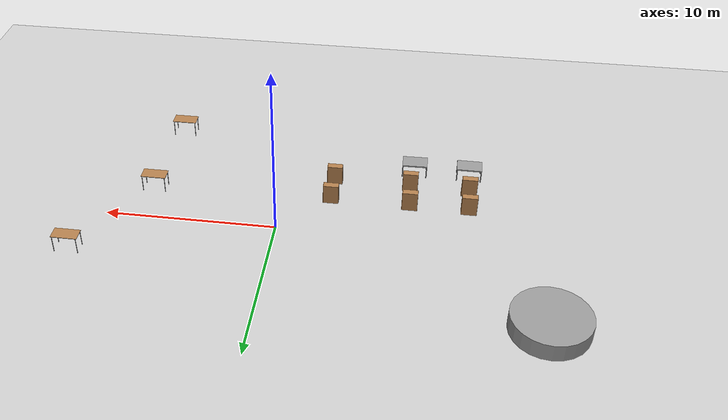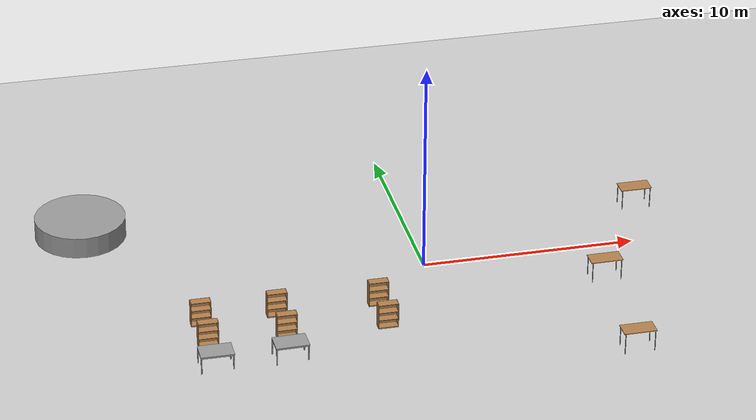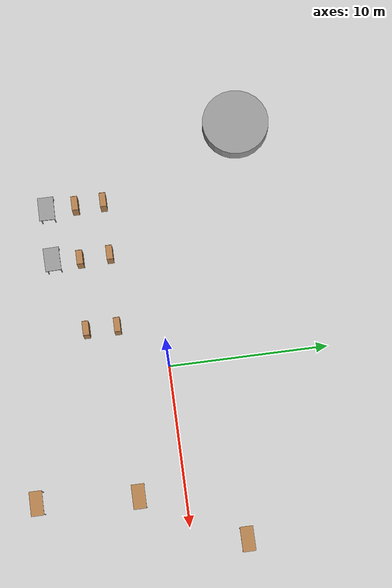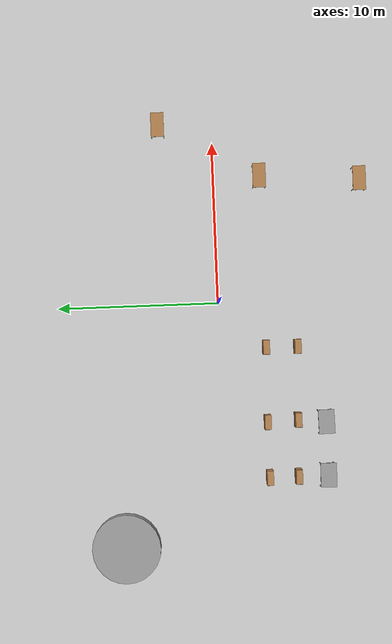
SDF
<sdf version="1.6">
 <world name="default">
  <model name="ground_plane">
   <static>1</static>
   <link name="link">
    <collision name="collision">
     <geometry><plane><normal>0 0 1</normal><size>100 100</size></plane></geometry>
     <surface><friction><ode><mu>100</mu><mu2>50</mu2></ode></friction></surface>
    </collision>
    <visual name="visual">
     <cast_shadows>0</cast_shadows>
     <geometry><plane><normal>0 0 1</normal><size>100 100</size></plane></geometry>
     <material>
      <script><uri>file://media/materials/scripts/gazebo.material</uri><name>Gazebo/Grey</name></script>
     </material>
    </visual>
   </link>
  </model>
  <model name="mydesk">
   <link name="link_0">
    <inertial>
     <mass>1</mass>
     <inertia>
      <ixx>0.166667</ixx>
      <ixy>0</ixy>
      <ixz>0</ixz>
      <iyy>0.166667</iyy>
      <iyz>0</iyz>
      <izz>0.166667</izz>
     </inertia>
    </inertial>
    <pose>0 0.022 0.32 0 -0 0</pose>
    <visual name="visual">
     <geometry><box><size>1.5 1 0.08</size></box></geometry>
     <material>
      <lighting>1</lighting>
      <script><uri>file://media/materials/scripts/gazebo.material</uri><name>Gazebo/Grey</name></script>
      <shader type="vertex"><normal_map>__default__</normal_map></shader>
      <ambient>0.3 0.3 0.3 1</ambient>
      <diffuse>0.7 0.7 0.7 1</diffuse>
      <specular>0.01 0.01 0.01 1</specular>
      <emissive>0 0 0 1</emissive>
     </material>
    </visual>
    <collision name="collision">
     <geometry><box><size>1.5 1 0.08</size></box></geometry>
     <surface>
      <friction>
       <ode><mu>1</mu><mu2>1</mu2><fdir1>0 0 0</fdir1><slip1>0</slip1><slip2>0</slip2></ode>
       <torsional>
        <coefficient>1</coefficient>
        <patch_radius>0</patch_radius>
        <surface_radius>0</surface_radius>
        <use_patch_radius>1</use_patch_radius>
        <ode><slip>0</slip></ode>
       </torsional>
      </friction>
      <bounce><restitution_coefficient>0</restitution_coefficient><threshold>1e+06</threshold></bounce>
      <contact>
       <collide_without_contact>0</collide_without_contact>
       <collide_without_contact_bitmask>1</collide_without_contact_bitmask>
       <collide_bitmask>1</collide_bitmask>
       <ode>
        <soft_cfm>0</soft_cfm>
        <soft_erp>0.2</soft_erp>
        <kp>1e+13</kp>
        <kd>1</kd>
        <max_vel>0.01</max_vel>
        <min_depth>0</min_depth>
       </ode>
       <bullet>
        <split_impulse>1</split_impulse>
        <split_impulse_penetration_threshold>-0.01</split_impulse_penetration_threshold>
        <soft_cfm>0</soft_cfm>
        <soft_erp>0.2</soft_erp>
        <kp>1e+13</kp>
        <kd>1</kd>
       </bullet>
      </contact>
     </surface>
    </collision>
   </link>
   <link name="link_1">
    <inertial>
     <mass>1</mass>
     <inertia><ixx>0.145833</ixx><ixy>0</ixy><ixz>0</ixz><iyy>0.145833</iyy><iyz>0</iyz><izz>0.125</izz></inertia>
     <pose>0 0 -0.02 0 -0 0</pose>
    </inertial>
    <pose>-0.72 0.382 -0.08 0 -0 0</pose>
    <visual name="visual">
     <geometry><cylinder><radius>0.03</radius><length>0.8</length></cylinder></geometry>
     <material>
      <lighting>1</lighting>
      <script><uri>file://media/materials/scripts/gazebo.material</uri><name>Gazebo/Grey</name></script>
      <shader type="vertex"><normal_map>__default__</normal_map></shader>
      <ambient>0.3 0.3 0.3 1</ambient>
      <diffuse>0.7 0.7 0.7 1</diffuse>
      <specular>0.01 0.01 0.01 1</specular>
      <emissive>0 0 0 1</emissive>
     </material>
    </visual>
    <collision name="collision">
     <geometry><cylinder><radius>0.03</radius><length>0.8</length></cylinder></geometry>
     <surface>
      <friction>
       <ode><mu>1</mu><mu2>1</mu2><fdir1>0 0 0</fdir1><slip1>0</slip1><slip2>0</slip2></ode>
       <torsional>
        <coefficient>1</coefficient>
        <patch_radius>0</patch_radius>
        <surface_radius>0</surface_radius>
        <use_patch_radius>1</use_patch_radius>
        <ode><slip>0</slip></ode>
       </torsional>
      </friction>
      <bounce><restitution_coefficient>0</restitution_coefficient><threshold>1e+06</threshold></bounce>
      <contact>
       <collide_without_contact>0</collide_without_contact>
       <collide_without_contact_bitmask>1</collide_without_contact_bitmask>
       <collide_bitmask>1</collide_bitmask>
       <ode>
        <soft_cfm>0</soft_cfm>
        <soft_erp>0.2</soft_erp>
        <kp>1e+13</kp>
        <kd>1</kd>
        <max_vel>0.01</max_vel>
        <min_depth>0</min_depth>
       </ode>
       <bullet>
        <split_impulse>1</split_impulse>
        <split_impulse_penetration_threshold>-0.01</split_impulse_penetration_threshold>
        <soft_cfm>0</soft_cfm>
        <soft_erp>0.2</soft_erp>
        <kp>1e+13</kp>
        <kd>1</kd>
       </bullet>
      </contact>
     </surface>
    </collision>
   </link>
   <link name="link_1_clone">
    <inertial>
     <mass>1</mass>
     <inertia><ixx>0.145833</ixx><ixy>0</ixy><ixz>0</ixz><iyy>0.145833</iyy><iyz>0</iyz><izz>0.125</izz></inertia>
     <pose>0 0 -0.02 0 -0 0</pose>
    </inertial>
    <pose>-0.72 -0.448 -0.08 0 -0 0</pose>
    <visual name="visual">
     <geometry><cylinder><radius>0.03</radius><length>0.8</length></cylinder></geometry>
     <material>
      <lighting>1</lighting>
      <script><uri>file://media/materials/scripts/gazebo.material</uri><name>Gazebo/Grey</name></script>
      <shader type="vertex"><normal_map>__default__</normal_map></shader>
      <ambient>0.3 0.3 0.3 1</ambient>
      <diffuse>0.7 0.7 0.7 1</diffuse>
      <specular>0.01 0.01 0.01 1</specular>
      <emissive>0 0 0 1</emissive>
     </material>
    </visual>
    <collision name="collision">
     <geometry><cylinder><radius>0.03</radius><length>0.8</length></cylinder></geometry>
     <surface>
      <friction>
       <ode><mu>1</mu><mu2>1</mu2><fdir1>0 0 0</fdir1><slip1>0</slip1><slip2>0</slip2></ode>
       <torsional>
        <coefficient>1</coefficient>
        <patch_radius>0</patch_radius>
        <surface_radius>0</surface_radius>
        <use_patch_radius>1</use_patch_radius>
        <ode><slip>0</slip></ode>
       </torsional>
      </friction>
      <bounce><restitution_coefficient>0</restitution_coefficient><threshold>1e+06</threshold></bounce>
      <contact>
       <collide_without_contact>0</collide_without_contact>
       <collide_without_contact_bitmask>1</collide_without_contact_bitmask>
       <collide_bitmask>1</collide_bitmask>
       <ode>
        <soft_cfm>0</soft_cfm>
        <soft_erp>0.2</soft_erp>
        <kp>1e+13</kp>
        <kd>1</kd>
        <max_vel>0.01</max_vel>
        <min_depth>0</min_depth>
       </ode>
       <bullet>
        <split_impulse>1</split_impulse>
        <split_impulse_penetration_threshold>-0.01</split_impulse_penetration_threshold>
        <soft_cfm>0</soft_cfm>
        <soft_erp>0.2</soft_erp>
        <kp>1e+13</kp>
        <kd>1</kd>
       </bullet>
      </contact>
     </surface>
    </collision>
   </link>
   <link name="link_1_clone_0">
    <inertial>
     <mass>1</mass>
     <inertia><ixx>0.145833</ixx><ixy>0</ixy><ixz>0</ixz><iyy>0.145833</iyy><iyz>0</iyz><izz>0.125</izz></inertia>
     <pose>0 0 -0.02 0 -0 0</pose>
    </inertial>
    <pose>0.72 -0.448 -0.08 0 -0 0</pose>
    <visual name="visual">
     <geometry><cylinder><radius>0.03</radius><length>0.8</length></cylinder></geometry>
     <material>
      <lighting>1</lighting>
      <script><uri>file://media/materials/scripts/gazebo.material</uri><name>Gazebo/Grey</name></script>
      <shader type="vertex"><normal_map>__default__</normal_map></shader>
      <ambient>0.3 0.3 0.3 1</ambient>
      <diffuse>0.7 0.7 0.7 1</diffuse>
      <specular>0.01 0.01 0.01 1</specular>
      <emissive>0 0 0 1</emissive>
     </material>
    </visual>
    <collision name="collision">
     <geometry><cylinder><radius>0.03</radius><length>0.8</length></cylinder></geometry>
     <surface>
      <friction>
       <ode><mu>1</mu><mu2>1</mu2><fdir1>0 0 0</fdir1><slip1>0</slip1><slip2>0</slip2></ode>
       <torsional>
        <coefficient>1</coefficient>
        <patch_radius>0</patch_radius>
        <surface_radius>0</surface_radius>
        <use_patch_radius>1</use_patch_radius>
        <ode><slip>0</slip></ode>
       </torsional>
      </friction>
      <bounce><restitution_coefficient>0</restitution_coefficient><threshold>1e+06</threshold></bounce>
      <contact>
       <collide_without_contact>0</collide_without_contact>
       <collide_without_contact_bitmask>1</collide_without_contact_bitmask>
       <collide_bitmask>1</collide_bitmask>
       <ode>
        <soft_cfm>0</soft_cfm>
        <soft_erp>0.2</soft_erp>
        <kp>1e+13</kp>
        <kd>1</kd>
        <max_vel>0.01</max_vel>
        <min_depth>0</min_depth>
       </ode>
       <bullet>
        <split_impulse>1</split_impulse>
        <split_impulse_penetration_threshold>-0.01</split_impulse_penetration_threshold>
        <soft_cfm>0</soft_cfm>
        <soft_erp>0.2</soft_erp>
        <kp>1e+13</kp>
        <kd>1</kd>
       </bullet>
      </contact>
     </surface>
    </collision>
   </link>
   <link name="link_1_clone_1">
    <inertial>
     <mass>1</mass>
     <inertia><ixx>0.145833</ixx><ixy>0</ixy><ixz>0</ixz><iyy>0.145833</iyy><iyz>0</iyz><izz>0.125</izz></inertia>
     <pose>0 0 -0.02 0 -0 0</pose>
    </inertial>
    <pose>0.72 0.492 -0.08 0 -0 0</pose>
    <visual name="visual">
     <geometry><cylinder><radius>0.03</radius><length>0.8</length></cylinder></geometry>
     <material>
      <lighting>1</lighting>
      <script><uri>file://media/materials/scripts/gazebo.material</uri><name>Gazebo/Grey</name></script>
      <shader type="vertex"><normal_map>__default__</normal_map></shader>
      <ambient>0.3 0.3 0.3 1</ambient>
      <diffuse>0.7 0.7 0.7 1</diffuse>
      <specular>0.01 0.01 0.01 1</specular>
      <emissive>0 0 0 1</emissive>
     </material>
    </visual>
    <collision name="collision">
     <geometry><cylinder><radius>0.03</radius><length>0.8</length></cylinder></geometry>
     <surface>
      <friction>
       <ode><mu>1</mu><mu2>1</mu2><fdir1>0 0 0</fdir1><slip1>0</slip1><slip2>0</slip2></ode>
       <torsional>
        <coefficient>1</coefficient>
        <patch_radius>0</patch_radius>
        <surface_radius>0</surface_radius>
        <use_patch_radius>1</use_patch_radius>
        <ode><slip>0</slip></ode>
       </torsional>
      </friction>
      <bounce><restitution_coefficient>0</restitution_coefficient><threshold>1e+06</threshold></bounce>
      <contact>
       <collide_without_contact>0</collide_without_contact>
       <collide_without_contact_bitmask>1</collide_without_contact_bitmask>
       <collide_bitmask>1</collide_bitmask>
       <ode>
        <soft_cfm>0</soft_cfm>
        <soft_erp>0.2</soft_erp>
        <kp>1e+13</kp>
        <kd>1</kd>
        <max_vel>0.01</max_vel>
        <min_depth>0</min_depth>
       </ode>
       <bullet>
        <split_impulse>1</split_impulse>
        <split_impulse_penetration_threshold>-0.01</split_impulse_penetration_threshold>
        <soft_cfm>0</soft_cfm>
        <soft_erp>0.2</soft_erp>
        <kp>1e+13</kp>
        <kd>1</kd>
       </bullet>
      </contact>
     </surface>
    </collision>
   </link>
   <joint name="link_0_JOINT_0" type="fixed">
    <parent>link_0</parent>
    <child>link_1_clone</child>
    <physics>
     <ode><limit><cfm>0</cfm><erp>0.2</erp></limit><suspension><cfm>0</cfm><erp>0.2</erp></suspension></ode>
    </physics>
   </joint>
   <joint name="link_0_JOINT_1" type="fixed">
    <parent>link_0</parent>
    <child>link_1_clone_1</child>
    <physics>
     <ode><limit><cfm>0</cfm><erp>0.2</erp></limit><suspension><cfm>0</cfm><erp>0.2</erp></suspension></ode>
    </physics>
   </joint>
   <joint name="link_0_JOINT_2" type="fixed">
    <parent>link_0</parent>
    <child>link_1_clone_0</child>
    <physics>
     <ode><limit><cfm>0</cfm><erp>0.2</erp></limit><suspension><cfm>0</cfm><erp>0.2</erp></suspension></ode>
    </physics>
   </joint>
   <joint name="link_0_JOINT_3" type="fixed">
    <parent>link_0</parent>
    <child>link_1</child>
    <physics>
     <ode><limit><cfm>0</cfm><erp>0.2</erp></limit><suspension><cfm>0</cfm><erp>0.2</erp></suspension></ode>
    </physics>
   </joint>
   <static>0</static>
   <pose>-7.60063 -6.44078 0.479998 3e-06 3e-06 -3.12126</pose>
  </model>
  <model name="mydesk_clone">
   <link name="link_0">
    <inertial>
     <mass>1</mass>
     <inertia>
      <ixx>0.166667</ixx>
      <ixy>0</ixy>
      <ixz>0</ixz>
      <iyy>0.166667</iyy>
      <iyz>0</iyz>
      <izz>0.166667</izz>
     </inertia>
    </inertial>
    <pose>0 0.022 0.32 0 -0 0</pose>
    <visual name="visual">
     <geometry><box><size>1.5 1 0.08</size></box></geometry>
     <material>
      <lighting>1</lighting>
      <script><uri>file://media/materials/scripts/gazebo.material</uri><name>Gazebo/Grey</name></script>
      <shader type="vertex"><normal_map>__default__</normal_map></shader>
      <ambient>0.3 0.3 0.3 1</ambient>
      <diffuse>0.7 0.7 0.7 1</diffuse>
      <specular>0.01 0.01 0.01 1</specular>
      <emissive>0 0 0 1</emissive>
     </material>
    </visual>
    <collision name="collision">
     <geometry><box><size>1.5 1 0.08</size></box></geometry>
     <surface>
      <friction>
       <ode><mu>1</mu><mu2>1</mu2><fdir1>0 0 0</fdir1><slip1>0</slip1><slip2>0</slip2></ode>
       <torsional>
        <coefficient>1</coefficient>
        <patch_radius>0</patch_radius>
        <surface_radius>0</surface_radius>
        <use_patch_radius>1</use_patch_radius>
        <ode><slip>0</slip></ode>
       </torsional>
      </friction>
      <bounce><restitution_coefficient>0</restitution_coefficient><threshold>1e+06</threshold></bounce>
      <contact>
       <collide_without_contact>0</collide_without_contact>
       <collide_without_contact_bitmask>1</collide_without_contact_bitmask>
       <collide_bitmask>1</collide_bitmask>
       <ode>
        <soft_cfm>0</soft_cfm>
        <soft_erp>0.2</soft_erp>
        <kp>1e+13</kp>
        <kd>1</kd>
        <max_vel>0.01</max_vel>
        <min_depth>0</min_depth>
       </ode>
       <bullet>
        <split_impulse>1</split_impulse>
        <split_impulse_penetration_threshold>-0.01</split_impulse_penetration_threshold>
        <soft_cfm>0</soft_cfm>
        <soft_erp>0.2</soft_erp>
        <kp>1e+13</kp>
        <kd>1</kd>
       </bullet>
      </contact>
     </surface>
    </collision>
   </link>
   <link name="link_1">
    <inertial>
     <mass>1</mass>
     <inertia><ixx>0.145833</ixx><ixy>0</ixy><ixz>0</ixz><iyy>0.145833</iyy><iyz>0</iyz><izz>0.125</izz></inertia>
     <pose>0 0 -0.02 0 -0 0</pose>
    </inertial>
    <pose>-0.72 0.382 -0.08 0 -0 0</pose>
    <visual name="visual">
     <geometry><cylinder><radius>0.03</radius><length>0.8</length></cylinder></geometry>
     <material>
      <lighting>1</lighting>
      <script><uri>file://media/materials/scripts/gazebo.material</uri><name>Gazebo/Grey</name></script>
      <shader type="vertex"><normal_map>__default__</normal_map></shader>
      <ambient>0.3 0.3 0.3 1</ambient>
      <diffuse>0.7 0.7 0.7 1</diffuse>
      <specular>0.01 0.01 0.01 1</specular>
      <emissive>0 0 0 1</emissive>
     </material>
    </visual>
    <collision name="collision">
     <geometry><cylinder><radius>0.03</radius><length>0.8</length></cylinder></geometry>
     <surface>
      <friction>
       <ode><mu>1</mu><mu2>1</mu2><fdir1>0 0 0</fdir1><slip1>0</slip1><slip2>0</slip2></ode>
       <torsional>
        <coefficient>1</coefficient>
        <patch_radius>0</patch_radius>
        <surface_radius>0</surface_radius>
        <use_patch_radius>1</use_patch_radius>
        <ode><slip>0</slip></ode>
       </torsional>
      </friction>
      <bounce><restitution_coefficient>0</restitution_coefficient><threshold>1e+06</threshold></bounce>
      <contact>
       <collide_without_contact>0</collide_without_contact>
       <collide_without_contact_bitmask>1</collide_without_contact_bitmask>
       <collide_bitmask>1</collide_bitmask>
       <ode>
        <soft_cfm>0</soft_cfm>
        <soft_erp>0.2</soft_erp>
        <kp>1e+13</kp>
        <kd>1</kd>
        <max_vel>0.01</max_vel>
        <min_depth>0</min_depth>
       </ode>
       <bullet>
        <split_impulse>1</split_impulse>
        <split_impulse_penetration_threshold>-0.01</split_impulse_penetration_threshold>
        <soft_cfm>0</soft_cfm>
        <soft_erp>0.2</soft_erp>
        <kp>1e+13</kp>
        <kd>1</kd>
       </bullet>
      </contact>
     </surface>
    </collision>
   </link>
   <link name="link_1_clone">
    <inertial>
     <mass>1</mass>
     <inertia><ixx>0.145833</ixx><ixy>0</ixy><ixz>0</ixz><iyy>0.145833</iyy><iyz>0</iyz><izz>0.125</izz></inertia>
     <pose>0 0 -0.02 0 -0 0</pose>
    </inertial>
    <pose>-0.72 -0.448 -0.08 0 -0 0</pose>
    <visual name="visual">
     <geometry><cylinder><radius>0.03</radius><length>0.8</length></cylinder></geometry>
     <material>
      <lighting>1</lighting>
      <script><uri>file://media/materials/scripts/gazebo.material</uri><name>Gazebo/Grey</name></script>
      <shader type="vertex"><normal_map>__default__</normal_map></shader>
      <ambient>0.3 0.3 0.3 1</ambient>
      <diffuse>0.7 0.7 0.7 1</diffuse>
      <specular>0.01 0.01 0.01 1</specular>
      <emissive>0 0 0 1</emissive>
     </material>
    </visual>
    <collision name="collision">
     <geometry><cylinder><radius>0.03</radius><length>0.8</length></cylinder></geometry>
     <surface>
      <friction>
       <ode><mu>1</mu><mu2>1</mu2><fdir1>0 0 0</fdir1><slip1>0</slip1><slip2>0</slip2></ode>
       <torsional>
        <coefficient>1</coefficient>
        <patch_radius>0</patch_radius>
        <surface_radius>0</surface_radius>
        <use_patch_radius>1</use_patch_radius>
        <ode><slip>0</slip></ode>
       </torsional>
      </friction>
      <bounce><restitution_coefficient>0</restitution_coefficient><threshold>1e+06</threshold></bounce>
      <contact>
       <collide_without_contact>0</collide_without_contact>
       <collide_without_contact_bitmask>1</collide_without_contact_bitmask>
       <collide_bitmask>1</collide_bitmask>
       <ode>
        <soft_cfm>0</soft_cfm>
        <soft_erp>0.2</soft_erp>
        <kp>1e+13</kp>
        <kd>1</kd>
        <max_vel>0.01</max_vel>
        <min_depth>0</min_depth>
       </ode>
       <bullet>
        <split_impulse>1</split_impulse>
        <split_impulse_penetration_threshold>-0.01</split_impulse_penetration_threshold>
        <soft_cfm>0</soft_cfm>
        <soft_erp>0.2</soft_erp>
        <kp>1e+13</kp>
        <kd>1</kd>
       </bullet>
      </contact>
     </surface>
    </collision>
   </link>
   <link name="link_1_clone_0">
    <inertial>
     <mass>1</mass>
     <inertia><ixx>0.145833</ixx><ixy>0</ixy><ixz>0</ixz><iyy>0.145833</iyy><iyz>0</iyz><izz>0.125</izz></inertia>
     <pose>0 0 -0.02 0 -0 0</pose>
    </inertial>
    <pose>0.72 -0.448 -0.08 0 -0 0</pose>
    <visual name="visual">
     <geometry><cylinder><radius>0.03</radius><length>0.8</length></cylinder></geometry>
     <material>
      <lighting>1</lighting>
      <script><uri>file://media/materials/scripts/gazebo.material</uri><name>Gazebo/Grey</name></script>
      <shader type="vertex"><normal_map>__default__</normal_map></shader>
      <ambient>0.3 0.3 0.3 1</ambient>
      <diffuse>0.7 0.7 0.7 1</diffuse>
      <specular>0.01 0.01 0.01 1</specular>
      <emissive>0 0 0 1</emissive>
     </material>
    </visual>
    <collision name="collision">
     <geometry><cylinder><radius>0.03</radius><length>0.8</length></cylinder></geometry>
     <surface>
      <friction>
       <ode><mu>1</mu><mu2>1</mu2><fdir1>0 0 0</fdir1><slip1>0</slip1><slip2>0</slip2></ode>
       <torsional>
        <coefficient>1</coefficient>
        <patch_radius>0</patch_radius>
        <surface_radius>0</surface_radius>
        <use_patch_radius>1</use_patch_radius>
        <ode><slip>0</slip></ode>
       </torsional>
      </friction>
      <bounce><restitution_coefficient>0</restitution_coefficient><threshold>1e+06</threshold></bounce>
      <contact>
       <collide_without_contact>0</collide_without_contact>
       <collide_without_contact_bitmask>1</collide_without_contact_bitmask>
       <collide_bitmask>1</collide_bitmask>
       <ode>
        <soft_cfm>0</soft_cfm>
        <soft_erp>0.2</soft_erp>
        <kp>1e+13</kp>
        <kd>1</kd>
        <max_vel>0.01</max_vel>
        <min_depth>0</min_depth>
       </ode>
       <bullet>
        <split_impulse>1</split_impulse>
        <split_impulse_penetration_threshold>-0.01</split_impulse_penetration_threshold>
        <soft_cfm>0</soft_cfm>
        <soft_erp>0.2</soft_erp>
        <kp>1e+13</kp>
        <kd>1</kd>
       </bullet>
      </contact>
     </surface>
    </collision>
   </link>
   <link name="link_1_clone_1">
    <inertial>
     <mass>1</mass>
     <inertia><ixx>0.145833</ixx><ixy>0</ixy><ixz>0</ixz><iyy>0.145833</iyy><iyz>0</iyz><izz>0.125</izz></inertia>
     <pose>0 0 -0.02 0 -0 0</pose>
    </inertial>
    <pose>0.72 0.492 -0.08 0 -0 0</pose>
    <visual name="visual">
     <geometry><cylinder><radius>0.03</radius><length>0.8</length></cylinder></geometry>
     <material>
      <lighting>1</lighting>
      <script><uri>file://media/materials/scripts/gazebo.material</uri><name>Gazebo/Grey</name></script>
      <shader type="vertex"><normal_map>__default__</normal_map></shader>
      <ambient>0.3 0.3 0.3 1</ambient>
      <diffuse>0.7 0.7 0.7 1</diffuse>
      <specular>0.01 0.01 0.01 1</specular>
      <emissive>0 0 0 1</emissive>
     </material>
    </visual>
    <collision name="collision">
     <geometry><cylinder><radius>0.03</radius><length>0.8</length></cylinder></geometry>
     <surface>
      <friction>
       <ode><mu>1</mu><mu2>1</mu2><fdir1>0 0 0</fdir1><slip1>0</slip1><slip2>0</slip2></ode>
       <torsional>
        <coefficient>1</coefficient>
        <patch_radius>0</patch_radius>
        <surface_radius>0</surface_radius>
        <use_patch_radius>1</use_patch_radius>
        <ode><slip>0</slip></ode>
       </torsional>
      </friction>
      <bounce><restitution_coefficient>0</restitution_coefficient><threshold>1e+06</threshold></bounce>
      <contact>
       <collide_without_contact>0</collide_without_contact>
       <collide_without_contact_bitmask>1</collide_without_contact_bitmask>
       <collide_bitmask>1</collide_bitmask>
       <ode>
        <soft_cfm>0</soft_cfm>
        <soft_erp>0.2</soft_erp>
        <kp>1e+13</kp>
        <kd>1</kd>
        <max_vel>0.01</max_vel>
        <min_depth>0</min_depth>
       </ode>
       <bullet>
        <split_impulse>1</split_impulse>
        <split_impulse_penetration_threshold>-0.01</split_impulse_penetration_threshold>
        <soft_cfm>0</soft_cfm>
        <soft_erp>0.2</soft_erp>
        <kp>1e+13</kp>
        <kd>1</kd>
       </bullet>
      </contact>
     </surface>
    </collision>
   </link>
   <joint name="link_0_JOINT_0" type="fixed">
    <parent>link_0</parent>
    <child>link_1_clone</child>
    <physics>
     <ode><limit><cfm>0</cfm><erp>0.2</erp></limit><suspension><cfm>0</cfm><erp>0.2</erp></suspension></ode>
    </physics>
   </joint>
   <joint name="link_0_JOINT_1" type="fixed">
    <parent>link_0</parent>
    <child>link_1_clone_1</child>
    <physics>
     <ode><limit><cfm>0</cfm><erp>0.2</erp></limit><suspension><cfm>0</cfm><erp>0.2</erp></suspension></ode>
    </physics>
   </joint>
   <joint name="link_0_JOINT_2" type="fixed">
    <parent>link_0</parent>
    <child>link_1_clone_0</child>
    <physics>
     <ode><limit><cfm>0</cfm><erp>0.2</erp></limit><suspension><cfm>0</cfm><erp>0.2</erp></suspension></ode>
    </physics>
   </joint>
   <joint name="link_0_JOINT_3" type="fixed">
    <parent>link_0</parent>
    <child>link_1</child>
    <physics>
     <ode><limit><cfm>0</cfm><erp>0.2</erp></limit><suspension><cfm>0</cfm><erp>0.2</erp></suspension></ode>
    </physics>
   </joint>
   <static>0</static>
   <pose>-10.9128 -6.45407 0.479998 0 -0 3.13386</pose>
  </model>
  <model name="bookshelf">
   <static>1</static>
   <link name="link">
    <inertial><mass>1</mass></inertial>
    <collision name="back">
     <pose>0 0.005 0.6 0 -0 0</pose>
     <geometry><box><size>0.9 0.01 1.2</size></box></geometry>
    </collision>
    <visual name="visual1">
     <pose>0 0.005 0.6 0 -0 0</pose>
     <geometry><box><size>0.9 0.01 1.2</size></box></geometry>
     <material>
      <script><uri>file://media/materials/scripts/gazebo.material</uri><name>Gazebo/Wood</name></script>
     </material>
    </visual>
    <collision name="left_side">
     <pose>0.45 -0.195 0.6 0 -0 0</pose>
     <geometry><box><size>0.02 0.4 1.2</size></box></geometry>
    </collision>
    <visual name="visual2">
     <pose>0.45 -0.195 0.6 0 -0 0</pose>
     <geometry><box><size>0.02 0.4 1.2</size></box></geometry>
     <material>
      <script><uri>file://media/materials/scripts/gazebo.material</uri><name>Gazebo/Wood</name></script>
     </material>
    </visual>
    <collision name="right_side">
     <pose>-0.45 -0.195 0.6 0 -0 0</pose>
     <geometry><box><size>0.02 0.4 1.2</size></box></geometry>
    </collision>
    <visual name="visual3">
     <pose>-0.45 -0.195 0.6 0 -0 0</pose>
     <geometry><box><size>0.02 0.4 1.2</size></box></geometry>
     <material>
      <script><uri>file://media/materials/scripts/gazebo.material</uri><name>Gazebo/Wood</name></script>
     </material>
    </visual>
    <collision name="bottom">
     <pose>0 -0.195 0.03 0 -0 0</pose>
     <geometry><box><size>0.88 0.4 0.06</size></box></geometry>
    </collision>
    <visual name="visual4">
     <pose>0 -0.195 0.03 0 -0 0</pose>
     <geometry><box><size>0.88 0.4 0.06</size></box></geometry>
     <material>
      <script><uri>file://media/materials/scripts/gazebo.material</uri><name>Gazebo/Wood</name></script>
     </material>
    </visual>
    <collision name="top">
     <pose>0 -0.195 1.19 0 -0 0</pose>
     <geometry><box><size>0.88 0.4 0.02</size></box></geometry>
    </collision>
    <visual name="visual5">
     <pose>0 -0.195 1.19 0 -0 0</pose>
     <geometry><box><size>0.88 0.4 0.02</size></box></geometry>
     <material>
      <script><uri>file://media/materials/scripts/gazebo.material</uri><name>Gazebo/Wood</name></script>
     </material>
    </visual>
    <collision name="low_shelf">
     <pose>0 -0.195 0.43 0 -0 0</pose>
     <geometry><box><size>0.88 0.4 0.02</size></box></geometry>
    </collision>
    <visual name="visual6">
     <pose>0 -0.195 0.43 0 -0 0</pose>
     <geometry><box><size>0.88 0.4 0.02</size></box></geometry>
     <material>
      <script><uri>file://media/materials/scripts/gazebo.material</uri><name>Gazebo/Wood</name></script>
     </material>
    </visual>
    <collision name="high_shelf">
     <pose>0 -0.195 0.8 0 -0 0</pose>
     <geometry><box><size>0.88 0.4 0.02</size></box></geometry>
    </collision>
    <visual name="visual7">
     <pose>0 -0.195 0.8 0 -0 0</pose>
     <geometry><box><size>0.88 0.4 0.02</size></box></geometry>
     <material>
      <script><uri>file://media/materials/scripts/gazebo.material</uri><name>Gazebo/Wood</name></script>
     </material>
    </visual>
   </link>
   <pose>-10.9454 -2.64937 0 0 -0 0</pose>
  </model>
  <model name="bookshelf_0">
   <static>1</static>
   <link name="link">
    <inertial><mass>1</mass></inertial>
    <collision name="back">
     <pose>0 0.005 0.6 0 -0 0</pose>
     <geometry><box><size>0.9 0.01 1.2</size></box></geometry>
    </collision>
    <visual name="visual1">
     <pose>0 0.005 0.6 0 -0 0</pose>
     <geometry><box><size>0.9 0.01 1.2</size></box></geometry>
     <material>
      <script><uri>file://media/materials/scripts/gazebo.material</uri><name>Gazebo/Wood</name></script>
     </material>
    </visual>
    <collision name="left_side">
     <pose>0.45 -0.195 0.6 0 -0 0</pose>
     <geometry><box><size>0.02 0.4 1.2</size></box></geometry>
    </collision>
    <visual name="visual2">
     <pose>0.45 -0.195 0.6 0 -0 0</pose>
     <geometry><box><size>0.02 0.4 1.2</size></box></geometry>
     <material>
      <script><uri>file://media/materials/scripts/gazebo.material</uri><name>Gazebo/Wood</name></script>
     </material>
    </visual>
    <collision name="right_side">
     <pose>-0.45 -0.195 0.6 0 -0 0</pose>
     <geometry><box><size>0.02 0.4 1.2</size></box></geometry>
    </collision>
    <visual name="visual3">
     <pose>-0.45 -0.195 0.6 0 -0 0</pose>
     <geometry><box><size>0.02 0.4 1.2</size></box></geometry>
     <material>
      <script><uri>file://media/materials/scripts/gazebo.material</uri><name>Gazebo/Wood</name></script>
     </material>
    </visual>
    <collision name="bottom">
     <pose>0 -0.195 0.03 0 -0 0</pose>
     <geometry><box><size>0.88 0.4 0.06</size></box></geometry>
    </collision>
    <visual name="visual4">
     <pose>0 -0.195 0.03 0 -0 0</pose>
     <geometry><box><size>0.88 0.4 0.06</size></box></geometry>
     <material>
      <script><uri>file://media/materials/scripts/gazebo.material</uri><name>Gazebo/Wood</name></script>
     </material>
    </visual>
    <collision name="top">
     <pose>0 -0.195 1.19 0 -0 0</pose>
     <geometry><box><size>0.88 0.4 0.02</size></box></geometry>
    </collision>
    <visual name="visual5">
     <pose>0 -0.195 1.19 0 -0 0</pose>
     <geometry><box><size>0.88 0.4 0.02</size></box></geometry>
     <material>
      <script><uri>file://media/materials/scripts/gazebo.material</uri><name>Gazebo/Wood</name></script>
     </material>
    </visual>
    <collision name="low_shelf">
     <pose>0 -0.195 0.43 0 -0 0</pose>
     <geometry><box><size>0.88 0.4 0.02</size></box></geometry>
    </collision>
    <visual name="visual6">
     <pose>0 -0.195 0.43 0 -0 0</pose>
     <geometry><box><size>0.88 0.4 0.02</size></box></geometry>
     <material>
      <script><uri>file://media/materials/scripts/gazebo.material</uri><name>Gazebo/Wood</name></script>
     </material>
    </visual>
    <collision name="high_shelf">
     <pose>0 -0.195 0.8 0 -0 0</pose>
     <geometry><box><size>0.88 0.4 0.02</size></box></geometry>
    </collision>
    <visual name="visual7">
     <pose>0 -0.195 0.8 0 -0 0</pose>
     <geometry><box><size>0.88 0.4 0.02</size></box></geometry>
     <material>
      <script><uri>file://media/materials/scripts/gazebo.material</uri><name>Gazebo/Wood</name></script>
     </material>
    </visual>
   </link>
   <pose>-7.49457 -2.63262 0 0 -0 0</pose>
  </model>
  <model name="bookshelf_1">
   <static>1</static>
   <link name="link">
    <inertial><mass>1</mass></inertial>
    <collision name="back">
     <pose>0 0.005 0.6 0 -0 0</pose>
     <geometry><box><size>0.9 0.01 1.2</size></box></geometry>
    </collision>
    <visual name="visual1">
     <pose>0 0.005 0.6 0 -0 0</pose>
     <geometry><box><size>0.9 0.01 1.2</size></box></geometry>
     <material>
      <script><uri>file://media/materials/scripts/gazebo.material</uri><name>Gazebo/Wood</name></script>
     </material>
    </visual>
    <collision name="left_side">
     <pose>0.45 -0.195 0.6 0 -0 0</pose>
     <geometry><box><size>0.02 0.4 1.2</size></box></geometry>
    </collision>
    <visual name="visual2">
     <pose>0.45 -0.195 0.6 0 -0 0</pose>
     <geometry><box><size>0.02 0.4 1.2</size></box></geometry>
     <material>
      <script><uri>file://media/materials/scripts/gazebo.material</uri><name>Gazebo/Wood</name></script>
     </material>
    </visual>
    <collision name="right_side">
     <pose>-0.45 -0.195 0.6 0 -0 0</pose>
     <geometry><box><size>0.02 0.4 1.2</size></box></geometry>
    </collision>
    <visual name="visual3">
     <pose>-0.45 -0.195 0.6 0 -0 0</pose>
     <geometry><box><size>0.02 0.4 1.2</size></box></geometry>
     <material>
      <script><uri>file://media/materials/scripts/gazebo.material</uri><name>Gazebo/Wood</name></script>
     </material>
    </visual>
    <collision name="bottom">
     <pose>0 -0.195 0.03 0 -0 0</pose>
     <geometry><box><size>0.88 0.4 0.06</size></box></geometry>
    </collision>
    <visual name="visual4">
     <pose>0 -0.195 0.03 0 -0 0</pose>
     <geometry><box><size>0.88 0.4 0.06</size></box></geometry>
     <material>
      <script><uri>file://media/materials/scripts/gazebo.material</uri><name>Gazebo/Wood</name></script>
     </material>
    </visual>
    <collision name="top">
     <pose>0 -0.195 1.19 0 -0 0</pose>
     <geometry><box><size>0.88 0.4 0.02</size></box></geometry>
    </collision>
    <visual name="visual5">
     <pose>0 -0.195 1.19 0 -0 0</pose>
     <geometry><box><size>0.88 0.4 0.02</size></box></geometry>
     <material>
      <script><uri>file://media/materials/scripts/gazebo.material</uri><name>Gazebo/Wood</name></script>
     </material>
    </visual>
    <collision name="low_shelf">
     <pose>0 -0.195 0.43 0 -0 0</pose>
     <geometry><box><size>0.88 0.4 0.02</size></box></geometry>
    </collision>
    <visual name="visual6">
     <pose>0 -0.195 0.43 0 -0 0</pose>
     <geometry><box><size>0.88 0.4 0.02</size></box></geometry>
     <material>
      <script><uri>file://media/materials/scripts/gazebo.material</uri><name>Gazebo/Wood</name></script>
     </material>
    </visual>
    <collision name="high_shelf">
     <pose>0 -0.195 0.8 0 -0 0</pose>
     <geometry><box><size>0.88 0.4 0.02</size></box></geometry>
    </collision>
    <visual name="visual7">
     <pose>0 -0.195 0.8 0 -0 0</pose>
     <geometry><box><size>0.88 0.4 0.02</size></box></geometry>
     <material>
      <script><uri>file://media/materials/scripts/gazebo.material</uri><name>Gazebo/Wood</name></script>
     </material>
    </visual>
   </link>
   <pose>-2.84857 -2.69643 0 0 -0 0</pose>
  </model>
  <model name="bookshelf_2">
   <static>1</static>
   <link name="link">
    <inertial><mass>1</mass></inertial>
    <collision name="back">
     <pose>0 0.005 0.6 0 -0 0</pose>
     <geometry><box><size>0.9 0.01 1.2</size></box></geometry>
    </collision>
    <visual name="visual1">
     <pose>0 0.005 0.6 0 -0 0</pose>
     <geometry><box><size>0.9 0.01 1.2</size></box></geometry>
     <material>
      <script><uri>file://media/materials/scripts/gazebo.material</uri><name>Gazebo/Wood</name></script>
     </material>
    </visual>
    <collision name="left_side">
     <pose>0.45 -0.195 0.6 0 -0 0</pose>
     <geometry><box><size>0.02 0.4 1.2</size></box></geometry>
    </collision>
    <visual name="visual2">
     <pose>0.45 -0.195 0.6 0 -0 0</pose>
     <geometry><box><size>0.02 0.4 1.2</size></box></geometry>
     <material>
      <script><uri>file://media/materials/scripts/gazebo.material</uri><name>Gazebo/Wood</name></script>
     </material>
    </visual>
    <collision name="right_side">
     <pose>-0.45 -0.195 0.6 0 -0 0</pose>
     <geometry><box><size>0.02 0.4 1.2</size></box></geometry>
    </collision>
    <visual name="visual3">
     <pose>-0.45 -0.195 0.6 0 -0 0</pose>
     <geometry><box><size>0.02 0.4 1.2</size></box></geometry>
     <material>
      <script><uri>file://media/materials/scripts/gazebo.material</uri><name>Gazebo/Wood</name></script>
     </material>
    </visual>
    <collision name="bottom">
     <pose>0 -0.195 0.03 0 -0 0</pose>
     <geometry><box><size>0.88 0.4 0.06</size></box></geometry>
    </collision>
    <visual name="visual4">
     <pose>0 -0.195 0.03 0 -0 0</pose>
     <geometry><box><size>0.88 0.4 0.06</size></box></geometry>
     <material>
      <script><uri>file://media/materials/scripts/gazebo.material</uri><name>Gazebo/Wood</name></script>
     </material>
    </visual>
    <collision name="top">
     <pose>0 -0.195 1.19 0 -0 0</pose>
     <geometry><box><size>0.88 0.4 0.02</size></box></geometry>
    </collision>
    <visual name="visual5">
     <pose>0 -0.195 1.19 0 -0 0</pose>
     <geometry><box><size>0.88 0.4 0.02</size></box></geometry>
     <material>
      <script><uri>file://media/materials/scripts/gazebo.material</uri><name>Gazebo/Wood</name></script>
     </material>
    </visual>
    <collision name="low_shelf">
     <pose>0 -0.195 0.43 0 -0 0</pose>
     <geometry><box><size>0.88 0.4 0.02</size></box></geometry>
    </collision>
    <visual name="visual6">
     <pose>0 -0.195 0.43 0 -0 0</pose>
     <geometry><box><size>0.88 0.4 0.02</size></box></geometry>
     <material>
      <script><uri>file://media/materials/scripts/gazebo.material</uri><name>Gazebo/Wood</name></script>
     </material>
    </visual>
    <collision name="high_shelf">
     <pose>0 -0.195 0.8 0 -0 0</pose>
     <geometry><box><size>0.88 0.4 0.02</size></box></geometry>
    </collision>
    <visual name="visual7">
     <pose>0 -0.195 0.8 0 -0 0</pose>
     <geometry><box><size>0.88 0.4 0.02</size></box></geometry>
     <material>
      <script><uri>file://media/materials/scripts/gazebo.material</uri><name>Gazebo/Wood</name></script>
     </material>
    </visual>
   </link>
   <pose>-10.941 -4.44284 0 0 -0 0</pose>
  </model>
  <model name="bookshelf_3">
   <static>1</static>
   <link name="link">
    <inertial><mass>1</mass></inertial>
    <collision name="back">
     <pose>0 0.005 0.6 0 -0 0</pose>
     <geometry><box><size>0.9 0.01 1.2</size></box></geometry>
    </collision>
    <visual name="visual1">
     <pose>0 0.005 0.6 0 -0 0</pose>
     <geometry><box><size>0.9 0.01 1.2</size></box></geometry>
     <material>
      <script><uri>file://media/materials/scripts/gazebo.material</uri><name>Gazebo/Wood</name></script>
     </material>
    </visual>
    <collision name="left_side">
     <pose>0.45 -0.195 0.6 0 -0 0</pose>
     <geometry><box><size>0.02 0.4 1.2</size></box></geometry>
    </collision>
    <visual name="visual2">
     <pose>0.45 -0.195 0.6 0 -0 0</pose>
     <geometry><box><size>0.02 0.4 1.2</size></box></geometry>
     <material>
      <script><uri>file://media/materials/scripts/gazebo.material</uri><name>Gazebo/Wood</name></script>
     </material>
    </visual>
    <collision name="right_side">
     <pose>-0.45 -0.195 0.6 0 -0 0</pose>
     <geometry><box><size>0.02 0.4 1.2</size></box></geometry>
    </collision>
    <visual name="visual3">
     <pose>-0.45 -0.195 0.6 0 -0 0</pose>
     <geometry><box><size>0.02 0.4 1.2</size></box></geometry>
     <material>
      <script><uri>file://media/materials/scripts/gazebo.material</uri><name>Gazebo/Wood</name></script>
     </material>
    </visual>
    <collision name="bottom">
     <pose>0 -0.195 0.03 0 -0 0</pose>
     <geometry><box><size>0.88 0.4 0.06</size></box></geometry>
    </collision>
    <visual name="visual4">
     <pose>0 -0.195 0.03 0 -0 0</pose>
     <geometry><box><size>0.88 0.4 0.06</size></box></geometry>
     <material>
      <script><uri>file://media/materials/scripts/gazebo.material</uri><name>Gazebo/Wood</name></script>
     </material>
    </visual>
    <collision name="top">
     <pose>0 -0.195 1.19 0 -0 0</pose>
     <geometry><box><size>0.88 0.4 0.02</size></box></geometry>
    </collision>
    <visual name="visual5">
     <pose>0 -0.195 1.19 0 -0 0</pose>
     <geometry><box><size>0.88 0.4 0.02</size></box></geometry>
     <material>
      <script><uri>file://media/materials/scripts/gazebo.material</uri><name>Gazebo/Wood</name></script>
     </material>
    </visual>
    <collision name="low_shelf">
     <pose>0 -0.195 0.43 0 -0 0</pose>
     <geometry><box><size>0.88 0.4 0.02</size></box></geometry>
    </collision>
    <visual name="visual6">
     <pose>0 -0.195 0.43 0 -0 0</pose>
     <geometry><box><size>0.88 0.4 0.02</size></box></geometry>
     <material>
      <script><uri>file://media/materials/scripts/gazebo.material</uri><name>Gazebo/Wood</name></script>
     </material>
    </visual>
    <collision name="high_shelf">
     <pose>0 -0.195 0.8 0 -0 0</pose>
     <geometry><box><size>0.88 0.4 0.02</size></box></geometry>
    </collision>
    <visual name="visual7">
     <pose>0 -0.195 0.8 0 -0 0</pose>
     <geometry><box><size>0.88 0.4 0.02</size></box></geometry>
     <material>
      <script><uri>file://media/materials/scripts/gazebo.material</uri><name>Gazebo/Wood</name></script>
     </material>
    </visual>
   </link>
   <pose>-7.42531 -4.52624 0 0 -0 0</pose>
  </model>
  <model name="bookshelf_4">
   <static>1</static>
   <link name="link">
    <inertial><mass>1</mass></inertial>
    <collision name="back">
     <pose>0 0.005 0.6 0 -0 0</pose>
     <geometry><box><size>0.9 0.01 1.2</size></box></geometry>
    </collision>
    <visual name="visual1">
     <pose>0 0.005 0.6 0 -0 0</pose>
     <geometry><box><size>0.9 0.01 1.2</size></box></geometry>
     <material>
      <script><uri>file://media/materials/scripts/gazebo.material</uri><name>Gazebo/Wood</name></script>
     </material>
    </visual>
    <collision name="left_side">
     <pose>0.45 -0.195 0.6 0 -0 0</pose>
     <geometry><box><size>0.02 0.4 1.2</size></box></geometry>
    </collision>
    <visual name="visual2">
     <pose>0.45 -0.195 0.6 0 -0 0</pose>
     <geometry><box><size>0.02 0.4 1.2</size></box></geometry>
     <material>
      <script><uri>file://media/materials/scripts/gazebo.material</uri><name>Gazebo/Wood</name></script>
     </material>
    </visual>
    <collision name="right_side">
     <pose>-0.45 -0.195 0.6 0 -0 0</pose>
     <geometry><box><size>0.02 0.4 1.2</size></box></geometry>
    </collision>
    <visual name="visual3">
     <pose>-0.45 -0.195 0.6 0 -0 0</pose>
     <geometry><box><size>0.02 0.4 1.2</size></box></geometry>
     <material>
      <script><uri>file://media/materials/scripts/gazebo.material</uri><name>Gazebo/Wood</name></script>
     </material>
    </visual>
    <collision name="bottom">
     <pose>0 -0.195 0.03 0 -0 0</pose>
     <geometry><box><size>0.88 0.4 0.06</size></box></geometry>
    </collision>
    <visual name="visual4">
     <pose>0 -0.195 0.03 0 -0 0</pose>
     <geometry><box><size>0.88 0.4 0.06</size></box></geometry>
     <material>
      <script><uri>file://media/materials/scripts/gazebo.material</uri><name>Gazebo/Wood</name></script>
     </material>
    </visual>
    <collision name="top">
     <pose>0 -0.195 1.19 0 -0 0</pose>
     <geometry><box><size>0.88 0.4 0.02</size></box></geometry>
    </collision>
    <visual name="visual5">
     <pose>0 -0.195 1.19 0 -0 0</pose>
     <geometry><box><size>0.88 0.4 0.02</size></box></geometry>
     <material>
      <script><uri>file://media/materials/scripts/gazebo.material</uri><name>Gazebo/Wood</name></script>
     </material>
    </visual>
    <collision name="low_shelf">
     <pose>0 -0.195 0.43 0 -0 0</pose>
     <geometry><box><size>0.88 0.4 0.02</size></box></geometry>
    </collision>
    <visual name="visual6">
     <pose>0 -0.195 0.43 0 -0 0</pose>
     <geometry><box><size>0.88 0.4 0.02</size></box></geometry>
     <material>
      <script><uri>file://media/materials/scripts/gazebo.material</uri><name>Gazebo/Wood</name></script>
     </material>
    </visual>
    <collision name="high_shelf">
     <pose>0 -0.195 0.8 0 -0 0</pose>
     <geometry><box><size>0.88 0.4 0.02</size></box></geometry>
    </collision>
    <visual name="visual7">
     <pose>0 -0.195 0.8 0 -0 0</pose>
     <geometry><box><size>0.88 0.4 0.02</size></box></geometry>
     <material>
      <script><uri>file://media/materials/scripts/gazebo.material</uri><name>Gazebo/Wood</name></script>
     </material>
    </visual>
   </link>
   <pose>-2.86817 -4.64893 0 0 -0 0</pose>
  </model>
  <model name="unit_cylinder">
   <pose>-15.0461 6.2068 0.499996 -2e-06 2e-06 -0.001096</pose>
   <link name="link">
    <inertial>
     <mass>1</mass>
     <inertia><ixx>0.145833</ixx><ixy>0</ixy><ixz>0</ixz><iyy>0.145833</iyy><iyz>0</iyz><izz>0.125</izz></inertia>
    </inertial>
    <collision name="collision">
     <geometry><cylinder><radius>2.13511</radius><length>1</length></cylinder></geometry>
    </collision>
    <visual name="visual">
     <geometry><cylinder><radius>2.13511</radius><length>1</length></cylinder></geometry>
     <material>
      <script><name>Gazebo/Grey</name><uri>file://media/materials/scripts/gazebo.material</uri></script>
     </material>
    </visual>
   </link>
  </model>
  <model name="table">
   <static>1</static>
   <link name="link">
    <collision name="surface">
     <pose>0 0 1 0 -0 0</pose>
     <geometry><box><size>1.5 0.8 0.03</size></box></geometry>
     <surface><friction><ode><mu>0.6</mu><mu2>0.6</mu2></ode></friction></surface>
    </collision>
    <visual name="visual1">
     <pose>0 0 1 0 -0 0</pose>
     <geometry><box><size>1.5 0.8 0.03</size></box></geometry>
     <material>
      <script><uri>file://media/materials/scripts/gazebo.material</uri><name>Gazebo/Wood</name></script>
     </material>
    </visual>
    <collision name="front_left_leg">
     <pose>0.68 0.38 0.5 0 -0 0</pose>
     <geometry><cylinder><radius>0.02</radius><length>1</length></cylinder></geometry>
    </collision>
    <visual name="front_left_leg">
     <pose>0.68 0.38 0.5 0 -0 0</pose>
     <geometry><cylinder><radius>0.02</radius><length>1</length></cylinder></geometry>
     <material>
      <script><uri>file://media/materials/scripts/gazebo.material</uri><name>Gazebo/Grey</name></script>
     </material>
    </visual>
    <collision name="front_right_leg">
     <pose>0.68 -0.38 0.5 0 -0 0</pose>
     <geometry><cylinder><radius>0.02</radius><length>1</length></cylinder></geometry>
    </collision>
    <visual name="front_right_leg">
     <pose>0.68 -0.38 0.5 0 -0 0</pose>
     <geometry><cylinder><radius>0.02</radius><length>1</length></cylinder></geometry>
     <material>
      <script><uri>file://media/materials/scripts/gazebo.material</uri><name>Gazebo/Grey</name></script>
     </material>
    </visual>
    <collision name="back_right_leg">
     <pose>-0.68 -0.38 0.5 0 -0 0</pose>
     <geometry><cylinder><radius>0.02</radius><length>1</length></cylinder></geometry>
    </collision>
    <visual name="back_right_leg">
     <pose>-0.68 -0.38 0.5 0 -0 0</pose>
     <geometry><cylinder><radius>0.02</radius><length>1</length></cylinder></geometry>
     <material>
      <script><uri>file://media/materials/scripts/gazebo.material</uri><name>Gazebo/Grey</name></script>
     </material>
    </visual>
    <collision name="back_left_leg">
     <pose>-0.68 0.38 0.5 0 -0 0</pose>
     <geometry><cylinder><radius>0.02</radius><length>1</length></cylinder></geometry>
    </collision>
    <visual name="back_left_leg">
     <pose>-0.68 0.38 0.5 0 -0 0</pose>
     <geometry><cylinder><radius>0.02</radius><length>1</length></cylinder></geometry>
     <material>
      <script><uri>file://media/materials/scripts/gazebo.material</uri><name>Gazebo/Grey</name></script>
     </material>
    </visual>
   </link>
   <pose>7.79815 -2.82904 0 0 -0 0</pose>
  </model>
  <model name="table_0">
   <static>1</static>
   <link name="link">
    <collision name="surface">
     <pose>0 0 1 0 -0 0</pose>
     <geometry><box><size>1.5 0.8 0.03</size></box></geometry>
     <surface><friction><ode><mu>0.6</mu><mu2>0.6</mu2></ode></friction></surface>
    </collision>
    <visual name="visual1">
     <pose>0 0 1 0 -0 0</pose>
     <geometry><box><size>1.5 0.8 0.03</size></box></geometry>
     <material>
      <script><uri>file://media/materials/scripts/gazebo.material</uri><name>Gazebo/Wood</name></script>
     </material>
    </visual>
    <collision name="front_left_leg">
     <pose>0.68 0.38 0.5 0 -0 0</pose>
     <geometry><cylinder><radius>0.02</radius><length>1</length></cylinder></geometry>
    </collision>
    <visual name="front_left_leg">
     <pose>0.68 0.38 0.5 0 -0 0</pose>
     <geometry><cylinder><radius>0.02</radius><length>1</length></cylinder></geometry>
     <material>
      <script><uri>file://media/materials/scripts/gazebo.material</uri><name>Gazebo/Grey</name></script>
     </material>
    </visual>
    <collision name="front_right_leg">
     <pose>0.68 -0.38 0.5 0 -0 0</pose>
     <geometry><cylinder><radius>0.02</radius><length>1</length></cylinder></geometry>
    </collision>
    <visual name="front_right_leg">
     <pose>0.68 -0.38 0.5 0 -0 0</pose>
     <geometry><cylinder><radius>0.02</radius><length>1</length></cylinder></geometry>
     <material>
      <script><uri>file://media/materials/scripts/gazebo.material</uri><name>Gazebo/Grey</name></script>
     </material>
    </visual>
    <collision name="back_right_leg">
     <pose>-0.68 -0.38 0.5 0 -0 0</pose>
     <geometry><cylinder><radius>0.02</radius><length>1</length></cylinder></geometry>
    </collision>
    <visual name="back_right_leg">
     <pose>-0.68 -0.38 0.5 0 -0 0</pose>
     <geometry><cylinder><radius>0.02</radius><length>1</length></cylinder></geometry>
     <material>
      <script><uri>file://media/materials/scripts/gazebo.material</uri><name>Gazebo/Grey</name></script>
     </material>
    </visual>
    <collision name="back_left_leg">
     <pose>-0.68 0.38 0.5 0 -0 0</pose>
     <geometry><cylinder><radius>0.02</radius><length>1</length></cylinder></geometry>
    </collision>
    <visual name="back_left_leg">
     <pose>-0.68 0.38 0.5 0 -0 0</pose>
     <geometry><cylinder><radius>0.02</radius><length>1</length></cylinder></geometry>
     <material>
      <script><uri>file://media/materials/scripts/gazebo.material</uri><name>Gazebo/Grey</name></script>
     </material>
    </visual>
   </link>
   <pose>7.41281 -9.00811 0 0 -0 0</pose>
  </model>
  <model name="table_1">
   <static>1</static>
   <link name="link">
    <collision name="surface">
     <pose>0 0 1 0 -0 0</pose>
     <geometry><box><size>1.5 0.8 0.03</size></box></geometry>
     <surface><friction><ode><mu>0.6</mu><mu2>0.6</mu2></ode></friction></surface>
    </collision>
    <visual name="visual1">
     <pose>0 0 1 0 -0 0</pose>
     <geometry><box><size>1.5 0.8 0.03</size></box></geometry>
     <material>
      <script><uri>file://media/materials/scripts/gazebo.material</uri><name>Gazebo/Wood</name></script>
     </material>
    </visual>
    <collision name="front_left_leg">
     <pose>0.68 0.38 0.5 0 -0 0</pose>
     <geometry><cylinder><radius>0.02</radius><length>1</length></cylinder></geometry>
    </collision>
    <visual name="front_left_leg">
     <pose>0.68 0.38 0.5 0 -0 0</pose>
     <geometry><cylinder><radius>0.02</radius><length>1</length></cylinder></geometry>
     <material>
      <script><uri>file://media/materials/scripts/gazebo.material</uri><name>Gazebo/Grey</name></script>
     </material>
    </visual>
    <collision name="front_right_leg">
     <pose>0.68 -0.38 0.5 0 -0 0</pose>
     <geometry><cylinder><radius>0.02</radius><length>1</length></cylinder></geometry>
    </collision>
    <visual name="front_right_leg">
     <pose>0.68 -0.38 0.5 0 -0 0</pose>
     <geometry><cylinder><radius>0.02</radius><length>1</length></cylinder></geometry>
     <material>
      <script><uri>file://media/materials/scripts/gazebo.material</uri><name>Gazebo/Grey</name></script>
     </material>
    </visual>
    <collision name="back_right_leg">
     <pose>-0.68 -0.38 0.5 0 -0 0</pose>
     <geometry><cylinder><radius>0.02</radius><length>1</length></cylinder></geometry>
    </collision>
    <visual name="back_right_leg">
     <pose>-0.68 -0.38 0.5 0 -0 0</pose>
     <geometry><cylinder><radius>0.02</radius><length>1</length></cylinder></geometry>
     <material>
      <script><uri>file://media/materials/scripts/gazebo.material</uri><name>Gazebo/Grey</name></script>
     </material>
    </visual>
    <collision name="back_left_leg">
     <pose>-0.68 0.38 0.5 0 -0 0</pose>
     <geometry><cylinder><radius>0.02</radius><length>1</length></cylinder></geometry>
    </collision>
    <visual name="back_left_leg">
     <pose>-0.68 0.38 0.5 0 -0 0</pose>
     <geometry><cylinder><radius>0.02</radius><length>1</length></cylinder></geometry>
     <material>
      <script><uri>file://media/materials/scripts/gazebo.material</uri><name>Gazebo/Grey</name></script>
     </material>
    </visual>
   </link>
   <pose>11.1505 3.35765 0 0 -0 0</pose>
  </model>
 </world>
</sdf>
